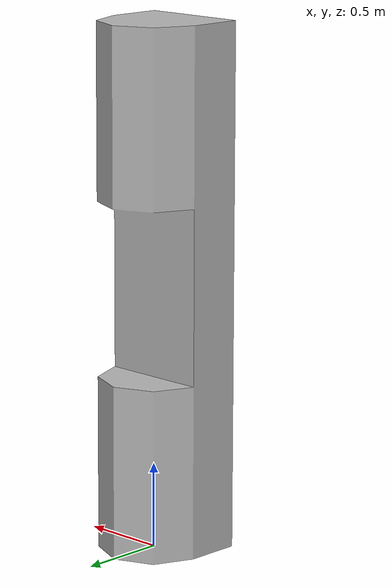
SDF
<?xml version="1.0" ?>
<sdf version="1.6">
  <model name="aws_robomaker_retail_ColumnB_01">
    <link name="link">
      <inertial>
        <mass>50</mass>
        <inertia>
          <ixx>44.5597233</ixx>
          <ixy>0</ixy>
          <ixz>0</ixz>
          <iyy>44.5597233</iyy>
          <iyz>0</iyz>
          <izz>1.8794166</izz>
        </inertia>
      </inertial>
      <collision name="collision">
        <geometry>
          <mesh>
            <uri>file://models/aws_robomaker_retail_ColumnB_01/meshes/aws_ColumnB_01_collision.DAE</uri>
            <scale>1 1 1</scale>
          </mesh>
        </geometry>
      </collision>
      <visual name="visual">
	    <geometry>
          <mesh>
            <uri>file://models/aws_robomaker_retail_ColumnB_01/meshes/aws_ColumnB_01_visual.DAE</uri>
          </mesh>
        </geometry>
        <meta>
          <layer>1</layer>
        </meta>
      </visual>
    </link>
      <static>1</static>
  </model>
</sdf>
